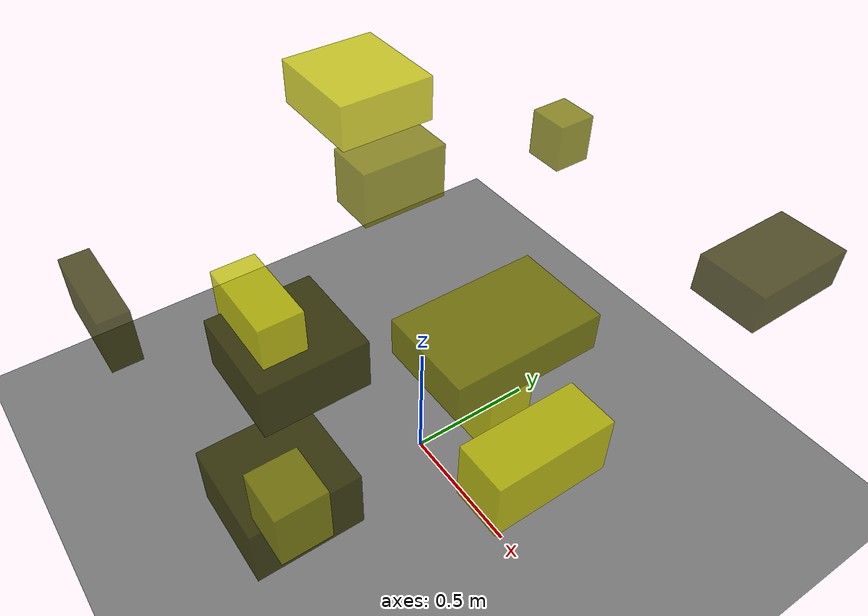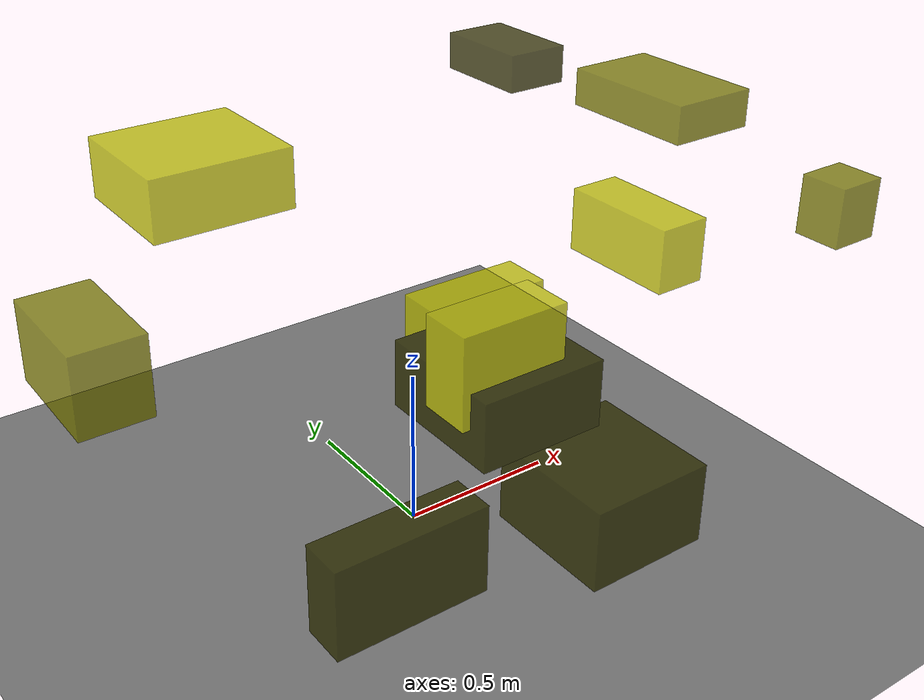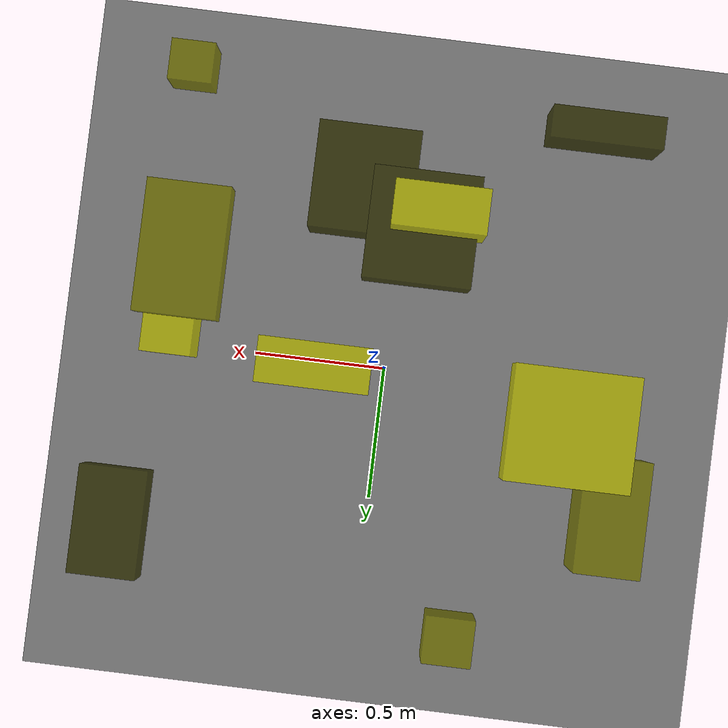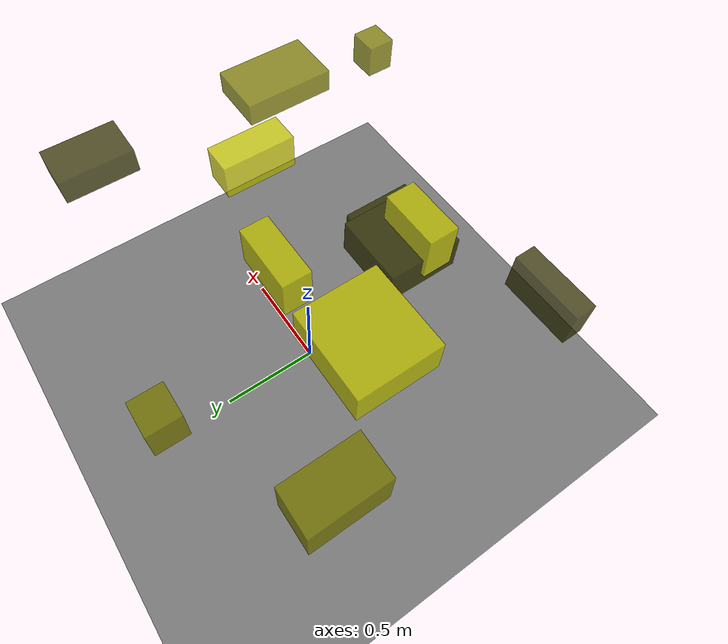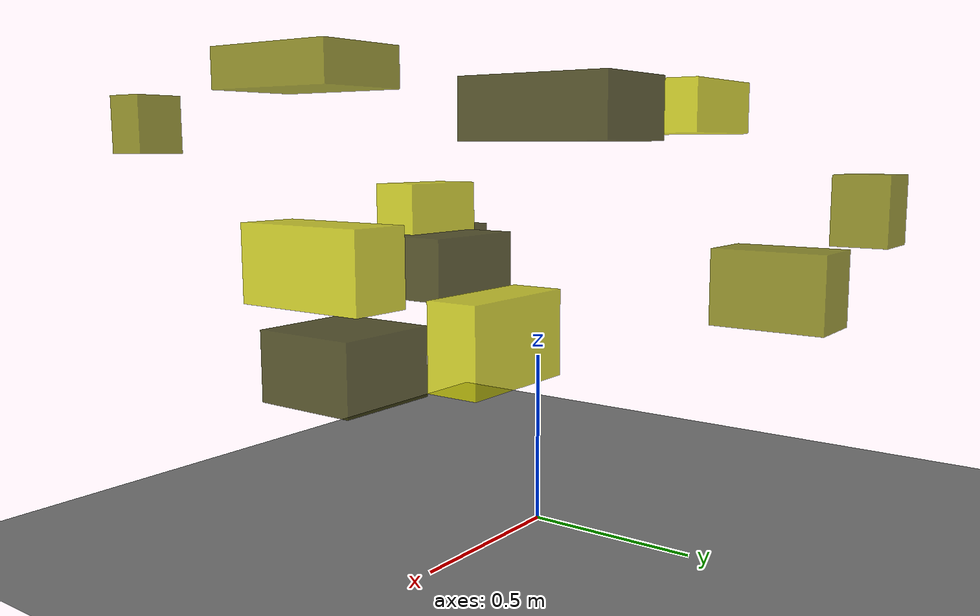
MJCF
<?xml version="1.0"?>
<mujoco model="obstacle_scene">
  <compiler angle="radian" coordinate="local"/>
  <option timestep="0.001" gravity="0 0 -9.81"/>

  <asset>
    <material name="obstacle_mat" rgba="0.8 0.8 0.0 0.8"/>
    <material name="ground_mat" rgba="0.5 0.5 0.5 1"/>
  </asset>

  <worldbody>
    <!-- Ground plane -->
    <geom name="ground" type="plane" size="3 3 0.1" material="ground_mat"/>

    <!-- Obstacles -->
    <body name="obstacle_0" pos="0.148598 -0.651169 0.419774">
      <geom name="obs_0" type="box" size="0.183065 0.190232 0.117890" rgba="0.2 0.2 0.0 0.8"/>
    </body>
    <body name="obstacle_1" pos="0.645423 -0.265662 1.306003">
      <geom name="obs_1" type="box" size="0.127523 0.200901 0.053095" rgba="0.5 0.5 0.0 0.8"/>
    </body>
    <body name="obstacle_2" pos="-0.585955 0.128324 1.237812">
      <geom name="obs_2" type="box" size="0.192904 0.178525 0.082802" rgba="0.8 0.8 0.0 0.8"/>
    </body>
    <body name="obstacle_3" pos="-0.650090 -0.885076 0.695162">
      <geom name="obs_3" type="box" size="0.190977 0.055525 0.112473" rgba="0.2 0.2 0.0 0.8"/>
    </body>
    <body name="obstacle_4" pos="0.700575 -0.848483 1.172919">
      <geom name="obs_4" type="box" size="0.067992 0.063011 0.079605" rgba="0.5 0.5 0.0 0.8"/>
    </body>
    <body name="obstacle_5" pos="-0.120019 -0.528898 0.866459">
      <geom name="obs_5" type="box" size="0.156755 0.075818 0.129318" rgba="0.8 0.8 0.0 0.8"/>
    </body>
    <body name="obstacle_6" pos="-0.070022 -0.473726 0.740749">
      <geom name="obs_6" type="box" size="0.183799 0.189298 0.096916" rgba="0.2 0.2 0.0 0.8"/>
    </body>
    <body name="obstacle_7" pos="-0.823964 0.415279 0.643780">
      <geom name="obs_7" type="box" size="0.113611 0.198454 0.130876" rgba="0.5 0.5 0.0 0.8"/>
    </body>
    <body name="obstacle_8" pos="0.719504 -0.145033 0.826115">
      <geom name="obs_8" type="box" size="0.083741 0.193849 0.101108" rgba="0.8 0.8 0.0 0.8"/>
    </body>
    <body name="obstacle_9" pos="0.783209 0.583252 1.183160">
      <geom name="obs_9" type="box" size="0.105554 0.167212 0.061579" rgba="0.2 0.2 0.0 0.8"/>
    </body>
    <body name="obstacle_10" pos="-0.307714 0.852594 0.944949">
      <geom name="obs_10" type="box" size="0.079514 0.075827 0.093953" rgba="0.5 0.5 0.0 0.8"/>
    </body>
    <body name="obstacle_11" pos="0.242174 0.025989 0.588339">
      <geom name="obs_11" type="box" size="0.196696 0.080179 0.124721" rgba="0.8 0.8 0.0 0.8"/>
    </body>
  </worldbody>
</mujoco>
